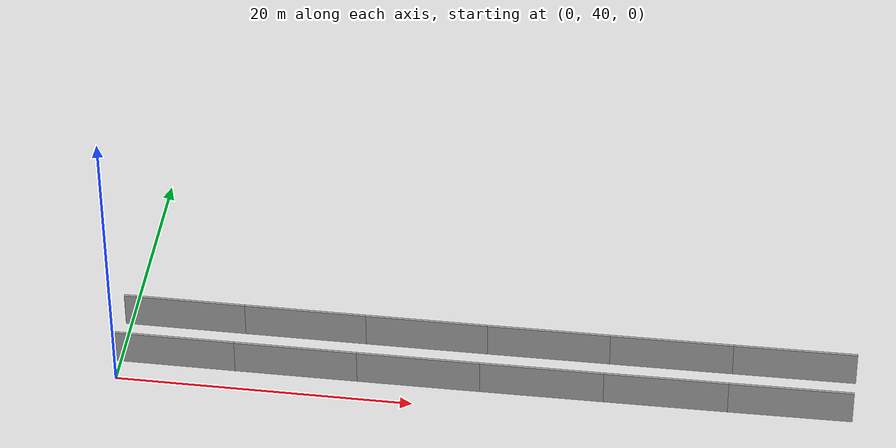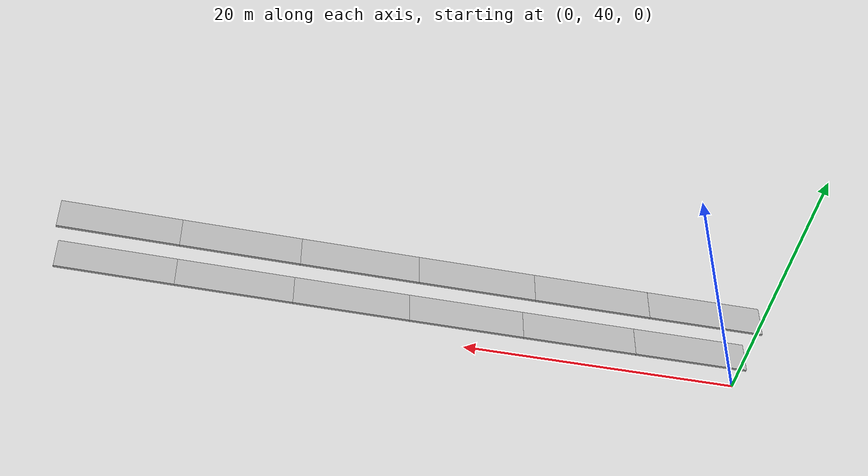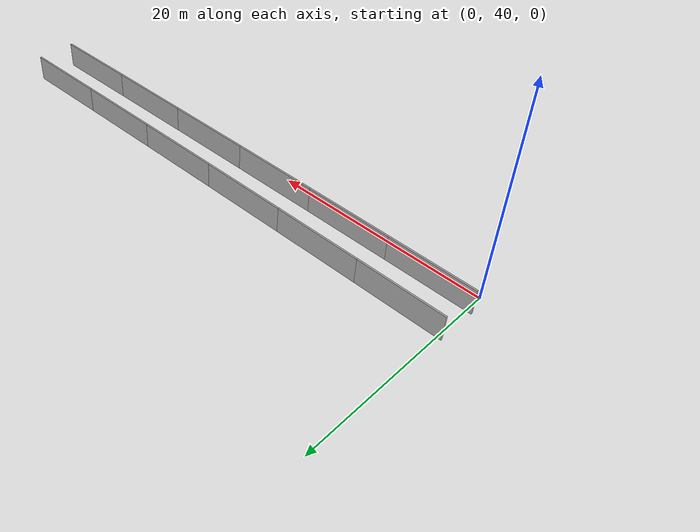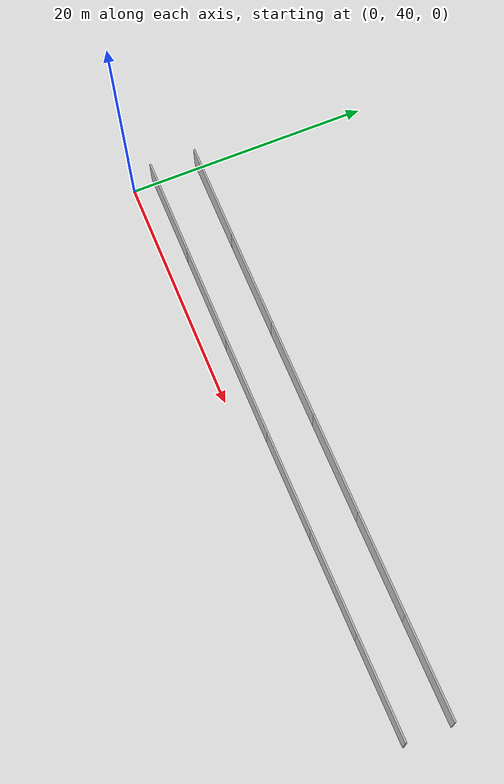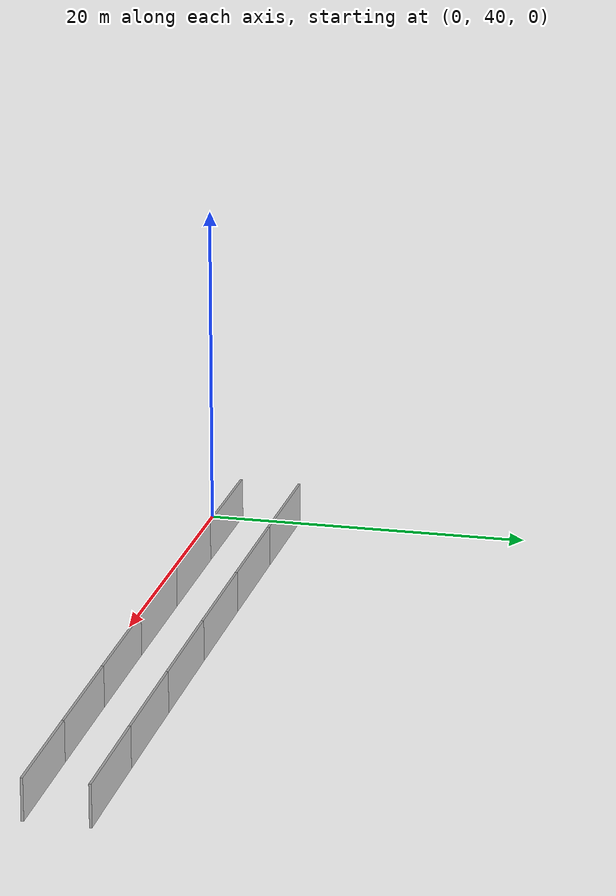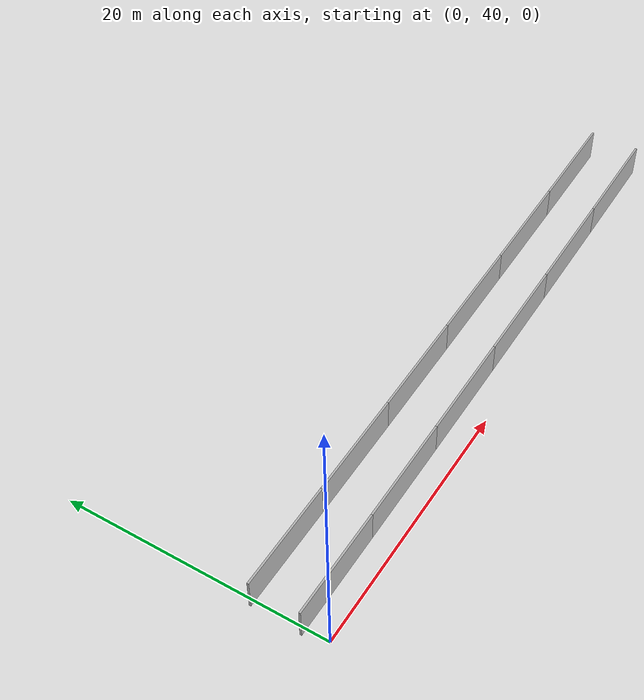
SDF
<?xml version="1.0" ?>
<sdf version="1.6">
  <model name="sps_4401">
    <pose frame="">0 0 0 0 -0 0</pose>
    <static>1</static>
    <self_collide>0</self_collide>
    <allow_auto_disable>0</allow_auto_disable>
    <link name="Wall8926">
      <kinematic>0</kinematic>
      <gravity>1</gravity>
      <self_collide>0</self_collide>
      <collision name="collision">
        <geometry>
          <box>
            <size>8.25177 0.15 2.5</size>
          </box>
        </geometry>
        <pose frame="">0 0 0 0 -0 0</pose>
      </collision>
      <visual name="visual">
        <geometry>
          <box>
            <size>8.25177 0.15 2.5</size>
          </box>
        </geometry>
        <pose frame="">0 0 0 0 -0 0</pose>
        <cast_shadows>1</cast_shadows>
        <transparency>0.0</transparency>
      </visual>
      <pose frame="">3.72015 45.5387 1.25 0 0 -0.00106511</pose>
    </link>
    <link name="Wall8927">
      <kinematic>0</kinematic>
      <gravity>1</gravity>
      <self_collide>0</self_collide>
      <collision name="collision">
        <geometry>
          <box>
            <size>8.25202 0.15 2.5</size>
          </box>
        </geometry>
        <pose frame="">0 0 0 0 -0 0</pose>
      </collision>
      <visual name="visual">
        <geometry>
          <box>
            <size>8.25202 0.15 2.5</size>
          </box>
        </geometry>
        <pose frame="">0 0 0 0 -0 0</pose>
        <cast_shadows>1</cast_shadows>
        <transparency>0.0</transparency>
      </visual>
      <pose frame="">11.972 45.5396 1.25 0 -0 0.00127958</pose>
    </link>
    <link name="Wall8928">
      <kinematic>0</kinematic>
      <gravity>1</gravity>
      <self_collide>0</self_collide>
      <collision name="collision">
        <geometry>
          <box>
            <size>8.25207 0.15 2.5</size>
          </box>
        </geometry>
        <pose frame="">0 0 0 0 -0 0</pose>
      </collision>
      <visual name="visual">
        <geometry>
          <box>
            <size>8.25207 0.15 2.5</size>
          </box>
        </geometry>
        <pose frame="">0 0 0 0 -0 0</pose>
        <cast_shadows>1</cast_shadows>
        <transparency>0.0</transparency>
      </visual>
      <pose frame="">20.2241 45.5601 1.25 0 -0 0.00368339</pose>
    </link>
    <link name="Wall8929">
      <kinematic>0</kinematic>
      <gravity>1</gravity>
      <self_collide>0</self_collide>
      <collision name="collision">
        <geometry>
          <box>
            <size>8.25174 0.15 2.5</size>
          </box>
        </geometry>
        <pose frame="">0 0 0 0 -0 0</pose>
      </collision>
      <visual name="visual">
        <geometry>
          <box>
            <size>8.25174 0.15 2.5</size>
          </box>
        </geometry>
        <pose frame="">0 0 0 0 -0 0</pose>
        <cast_shadows>1</cast_shadows>
        <transparency>0.0</transparency>
      </visual>
      <pose frame="">28.4759 45.6002 1.25 0 -0 0.0060357</pose>
    </link>
    <link name="Wall8930">
      <kinematic>0</kinematic>
      <gravity>1</gravity>
      <self_collide>0</self_collide>
      <collision name="collision">
        <geometry>
          <box>
            <size>8.25188 0.15 2.5</size>
          </box>
        </geometry>
        <pose frame="">0 0 0 0 -0 0</pose>
      </collision>
      <visual name="visual">
        <geometry>
          <box>
            <size>8.25188 0.15 2.5</size>
          </box>
        </geometry>
        <pose frame="">0 0 0 0 -0 0</pose>
        <cast_shadows>1</cast_shadows>
        <transparency>0.0</transparency>
      </visual>
      <pose frame="">36.7274 45.6596 1.25 0 -0 0.00836556</pose>
    </link>
    <link name="Wall8931">
      <kinematic>0</kinematic>
      <gravity>1</gravity>
      <self_collide>0</self_collide>
      <collision name="collision">
        <geometry>
          <box>
            <size>8.2517 0.15 2.5</size>
          </box>
        </geometry>
        <pose frame="">0 0 0 0 -0 0</pose>
      </collision>
      <visual name="visual">
        <geometry>
          <box>
            <size>8.2517 0.15 2.5</size>
          </box>
        </geometry>
        <pose frame="">0 0 0 0 -0 0</pose>
        <cast_shadows>1</cast_shadows>
        <transparency>0.0</transparency>
      </visual>
      <pose frame="">44.9788 45.7384 1.25 0 -0 0.0107328</pose>
    </link>
    <link name="Wall9017">
      <kinematic>0</kinematic>
      <gravity>1</gravity>
      <self_collide>0</self_collide>
      <collision name="collision">
        <geometry>
          <box>
            <size>8.2616 0.15 2.5</size>
          </box>
        </geometry>
        <pose frame="">0 0 0 0 -0 0</pose>
      </collision>
      <visual name="visual">
        <geometry>
          <box>
            <size>8.2616 0.15 2.5</size>
          </box>
        </geometry>
        <pose frame="">0 0 0 0 -0 0</pose>
        <cast_shadows>1</cast_shadows>
        <transparency>0.0</transparency>
      </visual>
      <pose frame="">3.63546 41.782 1.25 0 0 -0.0010934</pose>
    </link>
    <link name="Wall9018">
      <kinematic>0</kinematic>
      <gravity>1</gravity>
      <self_collide>0</self_collide>
      <collision name="collision">
        <geometry>
          <box>
            <size>8.26179 0.15 2.5</size>
          </box>
        </geometry>
        <pose frame="">0 0 0 0 -0 0</pose>
      </collision>
      <visual name="visual">
        <geometry>
          <box>
            <size>8.26179 0.15 2.5</size>
          </box>
        </geometry>
        <pose frame="">0 0 0 0 -0 0</pose>
        <cast_shadows>1</cast_shadows>
        <transparency>0.0</transparency>
      </visual>
      <pose frame="">11.8971 41.7828 1.25 0 -0 0.00128545</pose>
    </link>
    <link name="Wall9019">
      <kinematic>0</kinematic>
      <gravity>1</gravity>
      <self_collide>0</self_collide>
      <collision name="collision">
        <geometry>
          <box>
            <size>8.26165 0.15 2.5</size>
          </box>
        </geometry>
        <pose frame="">0 0 0 0 -0 0</pose>
      </collision>
      <visual name="visual">
        <geometry>
          <box>
            <size>8.26165 0.15 2.5</size>
          </box>
        </geometry>
        <pose frame="">0 0 0 0 -0 0</pose>
        <cast_shadows>1</cast_shadows>
        <transparency>0.0</transparency>
      </visual>
      <pose frame="">20.1588 41.8031 1.25 0 -0 0.0036274</pose>
    </link>
    <link name="Wall9020">
      <kinematic>0</kinematic>
      <gravity>1</gravity>
      <self_collide>0</self_collide>
      <collision name="collision">
        <geometry>
          <box>
            <size>8.26199 0.15 2.5</size>
          </box>
        </geometry>
        <pose frame="">0 0 0 0 -0 0</pose>
      </collision>
      <visual name="visual">
        <geometry>
          <box>
            <size>8.26199 0.15 2.5</size>
          </box>
        </geometry>
        <pose frame="">0 0 0 0 -0 0</pose>
        <cast_shadows>1</cast_shadows>
        <transparency>0.0</transparency>
      </visual>
      <pose frame="">28.4206 41.843 1.25 0 -0 0.00602821</pose>
    </link>
    <link name="Wall9021">
      <kinematic>0</kinematic>
      <gravity>1</gravity>
      <self_collide>0</self_collide>
      <collision name="collision">
        <geometry>
          <box>
            <size>8.26164 0.15 2.5</size>
          </box>
        </geometry>
        <pose frame="">0 0 0 0 -0 0</pose>
      </collision>
      <visual name="visual">
        <geometry>
          <box>
            <size>8.26164 0.15 2.5</size>
          </box>
        </geometry>
        <pose frame="">0 0 0 0 -0 0</pose>
        <cast_shadows>1</cast_shadows>
        <transparency>0.0</transparency>
      </visual>
      <pose frame="">36.6822 41.9024 1.25 0 -0 0.00835567</pose>
    </link>
    <link name="Wall9022">
      <kinematic>0</kinematic>
      <gravity>1</gravity>
      <self_collide>0</self_collide>
      <collision name="collision">
        <geometry>
          <box>
            <size>8.26189 0.15 2.5</size>
          </box>
        </geometry>
        <pose frame="">0 0 0 0 -0 0</pose>
      </collision>
      <visual name="visual">
        <geometry>
          <box>
            <size>8.26189 0.15 2.5</size>
          </box>
        </geometry>
        <pose frame="">0 0 0 0 -0 0</pose>
        <cast_shadows>1</cast_shadows>
        <transparency>0.0</transparency>
      </visual>
      <pose frame="">44.9435 41.9812 1.25 0 -0 0.0107195</pose>
    </link>
  </model>
</sdf>
